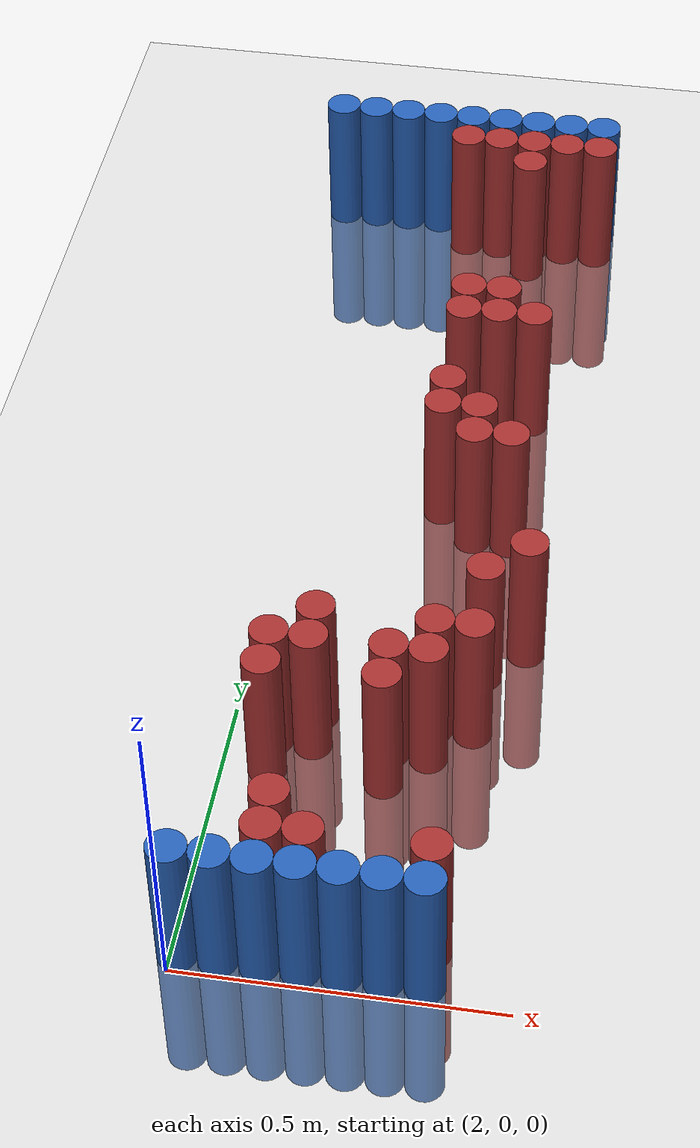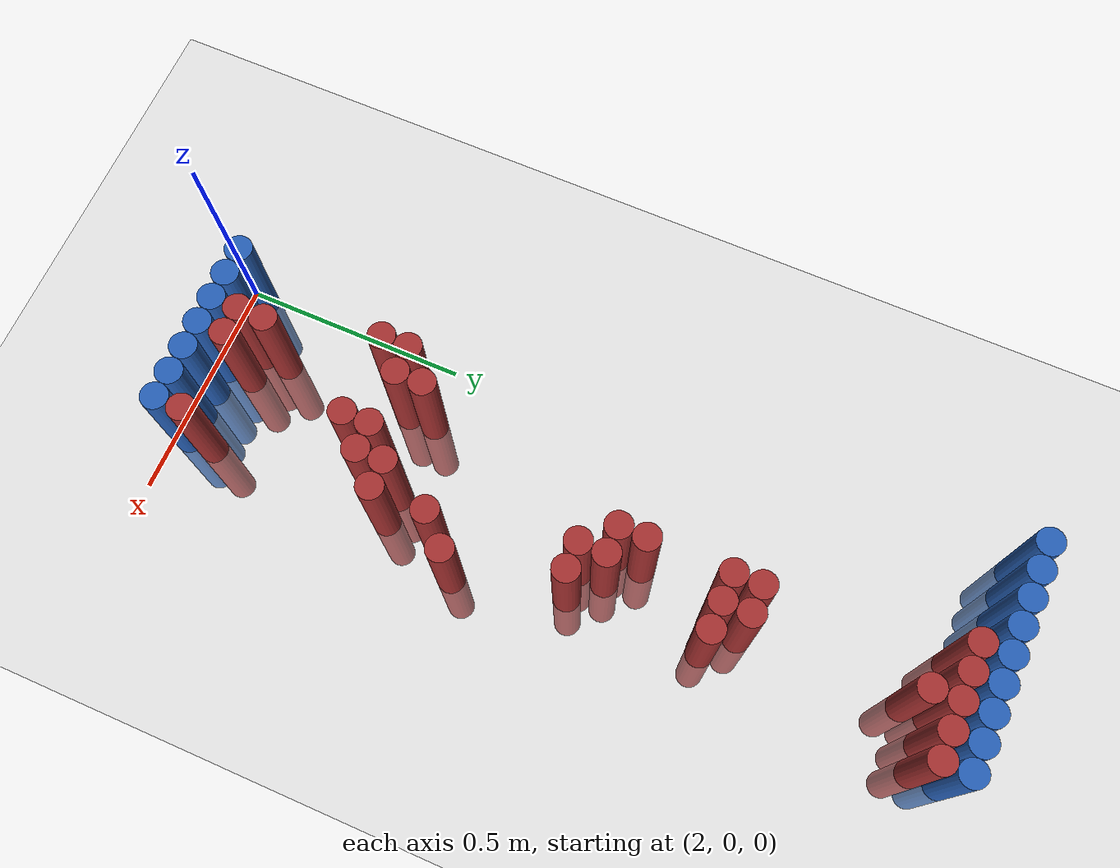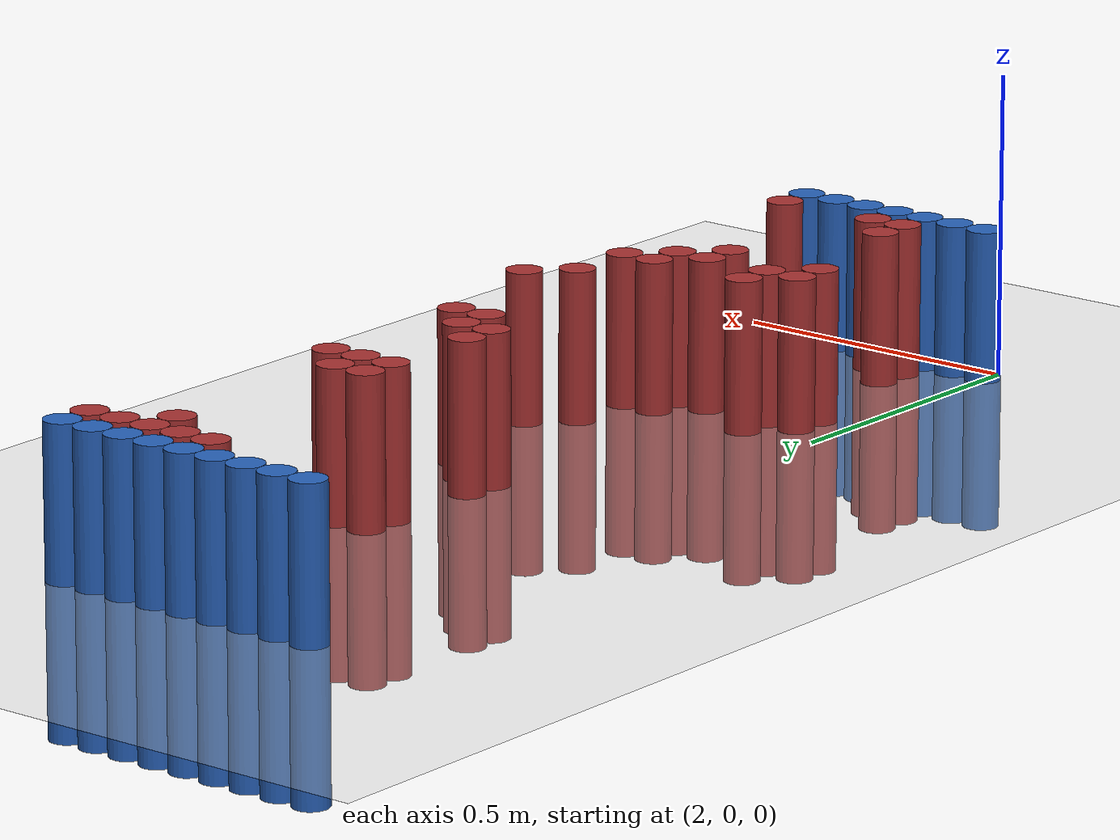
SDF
<sdf version="1.6">
 <world name="default">
  <model name="ground_plane">
   <static>1</static>
   <link name="link">
    <collision name="collision">
     <geometry><plane><normal>0 0 1</normal><size>100 100</size></plane></geometry>
     <surface><friction><ode><mu>100</mu><mu2>50</mu2></ode></friction></surface>
    </collision>
    <visual name="visual">
     <cast_shadows>0</cast_shadows>
     <geometry><plane><normal>0 0 1</normal><size>100 100</size></plane></geometry>
     <material>
      <script><uri>file://media/materials/scripts/gazebo.material</uri><name>Gazebo/Grey</name></script>
     </material>
    </visual>
   </link>
  </model>
  <model name="unit_cylinder_92">
   <static>1</static>
   <pose>1.950000 1.770000 0.000000 0.000000 0.000000 0.000000</pose>
   <link name="link">
    <inertial>
     <mass>1</mass>
     <inertia><ixx>0.145833</ixx><ixy>0</ixy><ixz>0</ixz><iyy>0.145833</iyy><iyz>0</iyz><izz>0.125</izz></inertia>
    </inertial>
    <collision name="collision">
     <geometry><cylinder><radius>0.030000</radius><length>0.5</length></cylinder></geometry>
    </collision>
    <visual name="visual">
     <geometry><cylinder><radius>0.030000</radius><length>0.5</length></cylinder></geometry>
     <material>
      <ambient>0.152000 0.379000 0.720000 1</ambient>
      <diffuse>0.152000 0.379000 0.720000 1</diffuse>
     </material>
     <material>
      <script><name>Gazebo/Grey</name><uri>file://media/materials/scripts/gazebo.material</uri></script>
     </material>
    </visual>
   </link>
  </model>
  <model name="unit_cylinder_93">
   <static>1</static>
   <pose>2.010000 0.030000 0.000000 0.000000 0.000000 0.000000</pose>
   <link name="link">
    <inertial>
     <mass>1</mass>
     <inertia><ixx>0.145833</ixx><ixy>0</ixy><ixz>0</ixz><iyy>0.145833</iyy><iyz>0</iyz><izz>0.125</izz></inertia>
    </inertial>
    <collision name="collision">
     <geometry><cylinder><radius>0.030000</radius><length>0.5</length></cylinder></geometry>
    </collision>
    <visual name="visual">
     <geometry><cylinder><radius>0.030000</radius><length>0.5</length></cylinder></geometry>
     <material>
      <ambient>0.152000 0.379000 0.720000 1</ambient>
      <diffuse>0.152000 0.379000 0.720000 1</diffuse>
     </material>
     <material>
      <script><name>Gazebo/Grey</name><uri>file://media/materials/scripts/gazebo.material</uri></script>
     </material>
    </visual>
   </link>
  </model>
  <model name="unit_cylinder_94">
   <static>1</static>
   <pose>2.010000 1.770000 0.000000 0.000000 0.000000 0.000000</pose>
   <link name="link">
    <inertial>
     <mass>1</mass>
     <inertia><ixx>0.145833</ixx><ixy>0</ixy><ixz>0</ixz><iyy>0.145833</iyy><iyz>0</iyz><izz>0.125</izz></inertia>
    </inertial>
    <collision name="collision">
     <geometry><cylinder><radius>0.030000</radius><length>0.5</length></cylinder></geometry>
    </collision>
    <visual name="visual">
     <geometry><cylinder><radius>0.030000</radius><length>0.5</length></cylinder></geometry>
     <material>
      <ambient>0.152000 0.379000 0.720000 1</ambient>
      <diffuse>0.152000 0.379000 0.720000 1</diffuse>
     </material>
     <material>
      <script><name>Gazebo/Grey</name><uri>file://media/materials/scripts/gazebo.material</uri></script>
     </material>
    </visual>
   </link>
  </model>
  <model name="unit_cylinder_95">
   <static>1</static>
   <pose>2.070000 1.770000 0.000000 0.000000 0.000000 0.000000</pose>
   <link name="link">
    <inertial>
     <mass>1</mass>
     <inertia><ixx>0.145833</ixx><ixy>0</ixy><ixz>0</ixz><iyy>0.145833</iyy><iyz>0</iyz><izz>0.125</izz></inertia>
    </inertial>
    <collision name="collision">
     <geometry><cylinder><radius>0.030000</radius><length>0.5</length></cylinder></geometry>
    </collision>
    <visual name="visual">
     <geometry><cylinder><radius>0.030000</radius><length>0.5</length></cylinder></geometry>
     <material>
      <ambient>0.152000 0.379000 0.720000 1</ambient>
      <diffuse>0.152000 0.379000 0.720000 1</diffuse>
     </material>
     <material>
      <script><name>Gazebo/Grey</name><uri>file://media/materials/scripts/gazebo.material</uri></script>
     </material>
    </visual>
   </link>
  </model>
  <model name="unit_cylinder_96">
   <static>1</static>
   <pose>2.130000 1.770000 0.000000 0.000000 0.000000 0.000000</pose>
   <link name="link">
    <inertial>
     <mass>1</mass>
     <inertia><ixx>0.145833</ixx><ixy>0</ixy><ixz>0</ixz><iyy>0.145833</iyy><iyz>0</iyz><izz>0.125</izz></inertia>
    </inertial>
    <collision name="collision">
     <geometry><cylinder><radius>0.030000</radius><length>0.5</length></cylinder></geometry>
    </collision>
    <visual name="visual">
     <geometry><cylinder><radius>0.030000</radius><length>0.5</length></cylinder></geometry>
     <material>
      <ambient>0.152000 0.379000 0.720000 1</ambient>
      <diffuse>0.152000 0.379000 0.720000 1</diffuse>
     </material>
     <material>
      <script><name>Gazebo/Grey</name><uri>file://media/materials/scripts/gazebo.material</uri></script>
     </material>
    </visual>
   </link>
  </model>
  <model name="unit_cylinder_97">
   <static>1</static>
   <pose>2.190000 1.770000 0.000000 0.000000 0.000000 0.000000</pose>
   <link name="link">
    <inertial>
     <mass>1</mass>
     <inertia><ixx>0.145833</ixx><ixy>0</ixy><ixz>0</ixz><iyy>0.145833</iyy><iyz>0</iyz><izz>0.125</izz></inertia>
    </inertial>
    <collision name="collision">
     <geometry><cylinder><radius>0.030000</radius><length>0.5</length></cylinder></geometry>
    </collision>
    <visual name="visual">
     <geometry><cylinder><radius>0.030000</radius><length>0.5</length></cylinder></geometry>
     <material>
      <ambient>0.152000 0.379000 0.720000 1</ambient>
      <diffuse>0.152000 0.379000 0.720000 1</diffuse>
     </material>
     <material>
      <script><name>Gazebo/Grey</name><uri>file://media/materials/scripts/gazebo.material</uri></script>
     </material>
    </visual>
   </link>
  </model>
  <model name="unit_cylinder_98">
   <static>1</static>
   <pose>2.250000 1.770000 0.000000 0.000000 0.000000 0.000000</pose>
   <link name="link">
    <inertial>
     <mass>1</mass>
     <inertia><ixx>0.145833</ixx><ixy>0</ixy><ixz>0</ixz><iyy>0.145833</iyy><iyz>0</iyz><izz>0.125</izz></inertia>
    </inertial>
    <collision name="collision">
     <geometry><cylinder><radius>0.030000</radius><length>0.5</length></cylinder></geometry>
    </collision>
    <visual name="visual">
     <geometry><cylinder><radius>0.030000</radius><length>0.5</length></cylinder></geometry>
     <material>
      <ambient>0.152000 0.379000 0.720000 1</ambient>
      <diffuse>0.152000 0.379000 0.720000 1</diffuse>
     </material>
     <material>
      <script><name>Gazebo/Grey</name><uri>file://media/materials/scripts/gazebo.material</uri></script>
     </material>
    </visual>
   </link>
  </model>
  <model name="unit_cylinder_99">
   <static>1</static>
   <pose>2.310000 1.770000 0.000000 0.000000 0.000000 0.000000</pose>
   <link name="link">
    <inertial>
     <mass>1</mass>
     <inertia><ixx>0.145833</ixx><ixy>0</ixy><ixz>0</ixz><iyy>0.145833</iyy><iyz>0</iyz><izz>0.125</izz></inertia>
    </inertial>
    <collision name="collision">
     <geometry><cylinder><radius>0.030000</radius><length>0.5</length></cylinder></geometry>
    </collision>
    <visual name="visual">
     <geometry><cylinder><radius>0.030000</radius><length>0.5</length></cylinder></geometry>
     <material>
      <ambient>0.152000 0.379000 0.720000 1</ambient>
      <diffuse>0.152000 0.379000 0.720000 1</diffuse>
     </material>
     <material>
      <script><name>Gazebo/Grey</name><uri>file://media/materials/scripts/gazebo.material</uri></script>
     </material>
    </visual>
   </link>
  </model>
  <model name="unit_cylinder_100">
   <static>1</static>
   <pose>2.370000 1.770000 0.000000 0.000000 0.000000 0.000000</pose>
   <link name="link">
    <inertial>
     <mass>1</mass>
     <inertia><ixx>0.145833</ixx><ixy>0</ixy><ixz>0</ixz><iyy>0.145833</iyy><iyz>0</iyz><izz>0.125</izz></inertia>
    </inertial>
    <collision name="collision">
     <geometry><cylinder><radius>0.030000</radius><length>0.5</length></cylinder></geometry>
    </collision>
    <visual name="visual">
     <geometry><cylinder><radius>0.030000</radius><length>0.5</length></cylinder></geometry>
     <material>
      <ambient>0.152000 0.379000 0.720000 1</ambient>
      <diffuse>0.152000 0.379000 0.720000 1</diffuse>
     </material>
     <material>
      <script><name>Gazebo/Grey</name><uri>file://media/materials/scripts/gazebo.material</uri></script>
     </material>
    </visual>
   </link>
  </model>
  <model name="unit_cylinder_101">
   <static>1</static>
   <pose>2.430000 1.770000 0.000000 0.000000 0.000000 0.000000</pose>
   <link name="link">
    <inertial>
     <mass>1</mass>
     <inertia><ixx>0.145833</ixx><ixy>0</ixy><ixz>0</ixz><iyy>0.145833</iyy><iyz>0</iyz><izz>0.125</izz></inertia>
    </inertial>
    <collision name="collision">
     <geometry><cylinder><radius>0.030000</radius><length>0.5</length></cylinder></geometry>
    </collision>
    <visual name="visual">
     <geometry><cylinder><radius>0.030000</radius><length>0.5</length></cylinder></geometry>
     <material>
      <ambient>0.152000 0.379000 0.720000 1</ambient>
      <diffuse>0.152000 0.379000 0.720000 1</diffuse>
     </material>
     <material>
      <script><name>Gazebo/Grey</name><uri>file://media/materials/scripts/gazebo.material</uri></script>
     </material>
    </visual>
   </link>
  </model>
  <model name="unit_cylinder_125">
   <static>1</static>
   <pose>2.190000 1.710000 0.000000 0.000000 0.000000 0.000000</pose>
   <link name="link">
    <inertial>
     <mass>1</mass>
     <inertia><ixx>0.145833</ixx><ixy>0</ixy><ixz>0</ixz><iyy>0.145833</iyy><iyz>0</iyz><izz>0.125</izz></inertia>
    </inertial>
    <collision name="collision">
     <geometry><cylinder><radius>0.030000</radius><length>0.5</length></cylinder></geometry>
    </collision>
    <visual name="visual">
     <geometry><cylinder><radius>0.030000</radius><length>0.5</length></cylinder></geometry>
     <material>
      <ambient>0.648000 0.192000 0.192000 1</ambient>
      <diffuse>0.648000 0.192000 0.192000 1</diffuse>
     </material>
     <material>
      <script><name>Gazebo/Grey</name><uri>file://media/materials/scripts/gazebo.material</uri></script>
     </material>
    </visual>
   </link>
  </model>
  <model name="unit_cylinder_126">
   <static>1</static>
   <pose>2.250000 1.710000 0.000000 0.000000 0.000000 0.000000</pose>
   <link name="link">
    <inertial>
     <mass>1</mass>
     <inertia><ixx>0.145833</ixx><ixy>0</ixy><ixz>0</ixz><iyy>0.145833</iyy><iyz>0</iyz><izz>0.125</izz></inertia>
    </inertial>
    <collision name="collision">
     <geometry><cylinder><radius>0.030000</radius><length>0.5</length></cylinder></geometry>
    </collision>
    <visual name="visual">
     <geometry><cylinder><radius>0.030000</radius><length>0.5</length></cylinder></geometry>
     <material>
      <ambient>0.648000 0.192000 0.192000 1</ambient>
      <diffuse>0.648000 0.192000 0.192000 1</diffuse>
     </material>
     <material>
      <script><name>Gazebo/Grey</name><uri>file://media/materials/scripts/gazebo.material</uri></script>
     </material>
    </visual>
   </link>
  </model>
  <model name="unit_cylinder_127">
   <static>1</static>
   <pose>2.310000 1.710000 0.000000 0.000000 0.000000 0.000000</pose>
   <link name="link">
    <inertial>
     <mass>1</mass>
     <inertia><ixx>0.145833</ixx><ixy>0</ixy><ixz>0</ixz><iyy>0.145833</iyy><iyz>0</iyz><izz>0.125</izz></inertia>
    </inertial>
    <collision name="collision">
     <geometry><cylinder><radius>0.030000</radius><length>0.5</length></cylinder></geometry>
    </collision>
    <visual name="visual">
     <geometry><cylinder><radius>0.030000</radius><length>0.5</length></cylinder></geometry>
     <material>
      <ambient>0.648000 0.192000 0.192000 1</ambient>
      <diffuse>0.648000 0.192000 0.192000 1</diffuse>
     </material>
     <material>
      <script><name>Gazebo/Grey</name><uri>file://media/materials/scripts/gazebo.material</uri></script>
     </material>
    </visual>
   </link>
  </model>
  <model name="unit_cylinder_128">
   <static>1</static>
   <pose>2.370000 1.710000 0.000000 0.000000 0.000000 0.000000</pose>
   <link name="link">
    <inertial>
     <mass>1</mass>
     <inertia><ixx>0.145833</ixx><ixy>0</ixy><ixz>0</ixz><iyy>0.145833</iyy><iyz>0</iyz><izz>0.125</izz></inertia>
    </inertial>
    <collision name="collision">
     <geometry><cylinder><radius>0.030000</radius><length>0.5</length></cylinder></geometry>
    </collision>
    <visual name="visual">
     <geometry><cylinder><radius>0.030000</radius><length>0.5</length></cylinder></geometry>
     <material>
      <ambient>0.648000 0.192000 0.192000 1</ambient>
      <diffuse>0.648000 0.192000 0.192000 1</diffuse>
     </material>
     <material>
      <script><name>Gazebo/Grey</name><uri>file://media/materials/scripts/gazebo.material</uri></script>
     </material>
    </visual>
   </link>
  </model>
  <model name="unit_cylinder_129">
   <static>1</static>
   <pose>2.430000 1.710000 0.000000 0.000000 0.000000 0.000000</pose>
   <link name="link">
    <inertial>
     <mass>1</mass>
     <inertia><ixx>0.145833</ixx><ixy>0</ixy><ixz>0</ixz><iyy>0.145833</iyy><iyz>0</iyz><izz>0.125</izz></inertia>
    </inertial>
    <collision name="collision">
     <geometry><cylinder><radius>0.030000</radius><length>0.5</length></cylinder></geometry>
    </collision>
    <visual name="visual">
     <geometry><cylinder><radius>0.030000</radius><length>0.5</length></cylinder></geometry>
     <material>
      <ambient>0.648000 0.192000 0.192000 1</ambient>
      <diffuse>0.648000 0.192000 0.192000 1</diffuse>
     </material>
     <material>
      <script><name>Gazebo/Grey</name><uri>file://media/materials/scripts/gazebo.material</uri></script>
     </material>
    </visual>
   </link>
  </model>
  <model name="unit_cylinder_145">
   <static>1</static>
   <pose>2.310000 1.650000 0.000000 0.000000 0.000000 0.000000</pose>
   <link name="link">
    <inertial>
     <mass>1</mass>
     <inertia><ixx>0.145833</ixx><ixy>0</ixy><ixz>0</ixz><iyy>0.145833</iyy><iyz>0</iyz><izz>0.125</izz></inertia>
    </inertial>
    <collision name="collision">
     <geometry><cylinder><radius>0.030000</radius><length>0.5</length></cylinder></geometry>
    </collision>
    <visual name="visual">
     <geometry><cylinder><radius>0.030000</radius><length>0.5</length></cylinder></geometry>
     <material>
      <ambient>0.648000 0.192000 0.192000 1</ambient>
      <diffuse>0.648000 0.192000 0.192000 1</diffuse>
     </material>
     <material>
      <script><name>Gazebo/Grey</name><uri>file://media/materials/scripts/gazebo.material</uri></script>
     </material>
    </visual>
   </link>
  </model>
  <model name="unit_cylinder_165">
   <static>1</static>
   <pose>2.250000 1.290000 0.000000 0.000000 0.000000 0.000000</pose>
   <link name="link">
    <inertial>
     <mass>1</mass>
     <inertia><ixx>0.145833</ixx><ixy>0</ixy><ixz>0</ixz><iyy>0.145833</iyy><iyz>0</iyz><izz>0.125</izz></inertia>
    </inertial>
    <collision name="collision">
     <geometry><cylinder><radius>0.030000</radius><length>0.5</length></cylinder></geometry>
    </collision>
    <visual name="visual">
     <geometry><cylinder><radius>0.030000</radius><length>0.5</length></cylinder></geometry>
     <material>
      <ambient>0.648000 0.192000 0.192000 1</ambient>
      <diffuse>0.648000 0.192000 0.192000 1</diffuse>
     </material>
     <material>
      <script><name>Gazebo/Grey</name><uri>file://media/materials/scripts/gazebo.material</uri></script>
     </material>
    </visual>
   </link>
  </model>
  <model name="unit_cylinder_166">
   <static>1</static>
   <pose>2.310000 1.290000 0.000000 0.000000 0.000000 0.000000</pose>
   <link name="link">
    <inertial>
     <mass>1</mass>
     <inertia><ixx>0.145833</ixx><ixy>0</ixy><ixz>0</ixz><iyy>0.145833</iyy><iyz>0</iyz><izz>0.125</izz></inertia>
    </inertial>
    <collision name="collision">
     <geometry><cylinder><radius>0.030000</radius><length>0.5</length></cylinder></geometry>
    </collision>
    <visual name="visual">
     <geometry><cylinder><radius>0.030000</radius><length>0.5</length></cylinder></geometry>
     <material>
      <ambient>0.648000 0.192000 0.192000 1</ambient>
      <diffuse>0.648000 0.192000 0.192000 1</diffuse>
     </material>
     <material>
      <script><name>Gazebo/Grey</name><uri>file://media/materials/scripts/gazebo.material</uri></script>
     </material>
    </visual>
   </link>
  </model>
  <model name="unit_cylinder_169">
   <static>1</static>
   <pose>2.250000 1.230000 0.000000 0.000000 0.000000 0.000000</pose>
   <link name="link">
    <inertial>
     <mass>1</mass>
     <inertia><ixx>0.145833</ixx><ixy>0</ixy><ixz>0</ixz><iyy>0.145833</iyy><iyz>0</iyz><izz>0.125</izz></inertia>
    </inertial>
    <collision name="collision">
     <geometry><cylinder><radius>0.030000</radius><length>0.5</length></cylinder></geometry>
    </collision>
    <visual name="visual">
     <geometry><cylinder><radius>0.030000</radius><length>0.5</length></cylinder></geometry>
     <material>
      <ambient>0.648000 0.192000 0.192000 1</ambient>
      <diffuse>0.648000 0.192000 0.192000 1</diffuse>
     </material>
     <material>
      <script><name>Gazebo/Grey</name><uri>file://media/materials/scripts/gazebo.material</uri></script>
     </material>
    </visual>
   </link>
  </model>
  <model name="unit_cylinder_170">
   <static>1</static>
   <pose>2.310000 1.230000 0.000000 0.000000 0.000000 0.000000</pose>
   <link name="link">
    <inertial>
     <mass>1</mass>
     <inertia><ixx>0.145833</ixx><ixy>0</ixy><ixz>0</ixz><iyy>0.145833</iyy><iyz>0</iyz><izz>0.125</izz></inertia>
    </inertial>
    <collision name="collision">
     <geometry><cylinder><radius>0.030000</radius><length>0.5</length></cylinder></geometry>
    </collision>
    <visual name="visual">
     <geometry><cylinder><radius>0.030000</radius><length>0.5</length></cylinder></geometry>
     <material>
      <ambient>0.648000 0.192000 0.192000 1</ambient>
      <diffuse>0.648000 0.192000 0.192000 1</diffuse>
     </material>
     <material>
      <script><name>Gazebo/Grey</name><uri>file://media/materials/scripts/gazebo.material</uri></script>
     </material>
    </visual>
   </link>
  </model>
  <model name="unit_cylinder_171">
   <static>1</static>
   <pose>2.370000 1.230000 0.000000 0.000000 0.000000 0.000000</pose>
   <link name="link">
    <inertial>
     <mass>1</mass>
     <inertia><ixx>0.145833</ixx><ixy>0</ixy><ixz>0</ixz><iyy>0.145833</iyy><iyz>0</iyz><izz>0.125</izz></inertia>
    </inertial>
    <collision name="collision">
     <geometry><cylinder><radius>0.030000</radius><length>0.5</length></cylinder></geometry>
    </collision>
    <visual name="visual">
     <geometry><cylinder><radius>0.030000</radius><length>0.5</length></cylinder></geometry>
     <material>
      <ambient>0.648000 0.192000 0.192000 1</ambient>
      <diffuse>0.648000 0.192000 0.192000 1</diffuse>
     </material>
     <material>
      <script><name>Gazebo/Grey</name><uri>file://media/materials/scripts/gazebo.material</uri></script>
     </material>
    </visual>
   </link>
  </model>
  <model name="unit_cylinder_173">
   <static>1</static>
   <pose>2.250000 1.050000 0.000000 0.000000 0.000000 0.000000</pose>
   <link name="link">
    <inertial>
     <mass>1</mass>
     <inertia><ixx>0.145833</ixx><ixy>0</ixy><ixz>0</ixz><iyy>0.145833</iyy><iyz>0</iyz><izz>0.125</izz></inertia>
    </inertial>
    <collision name="collision">
     <geometry><cylinder><radius>0.030000</radius><length>0.5</length></cylinder></geometry>
    </collision>
    <visual name="visual">
     <geometry><cylinder><radius>0.030000</radius><length>0.5</length></cylinder></geometry>
     <material>
      <ambient>0.648000 0.192000 0.192000 1</ambient>
      <diffuse>0.648000 0.192000 0.192000 1</diffuse>
     </material>
     <material>
      <script><name>Gazebo/Grey</name><uri>file://media/materials/scripts/gazebo.material</uri></script>
     </material>
    </visual>
   </link>
  </model>
  <model name="unit_cylinder_176">
   <static>1</static>
   <pose>2.250000 0.990000 0.000000 0.000000 0.000000 0.000000</pose>
   <link name="link">
    <inertial>
     <mass>1</mass>
     <inertia><ixx>0.145833</ixx><ixy>0</ixy><ixz>0</ixz><iyy>0.145833</iyy><iyz>0</iyz><izz>0.125</izz></inertia>
    </inertial>
    <collision name="collision">
     <geometry><cylinder><radius>0.030000</radius><length>0.5</length></cylinder></geometry>
    </collision>
    <visual name="visual">
     <geometry><cylinder><radius>0.030000</radius><length>0.5</length></cylinder></geometry>
     <material>
      <ambient>0.648000 0.192000 0.192000 1</ambient>
      <diffuse>0.648000 0.192000 0.192000 1</diffuse>
     </material>
     <material>
      <script><name>Gazebo/Grey</name><uri>file://media/materials/scripts/gazebo.material</uri></script>
     </material>
    </visual>
   </link>
  </model>
  <model name="unit_cylinder_177">
   <static>1</static>
   <pose>2.310000 0.990000 0.000000 0.000000 0.000000 0.000000</pose>
   <link name="link">
    <inertial>
     <mass>1</mass>
     <inertia><ixx>0.145833</ixx><ixy>0</ixy><ixz>0</ixz><iyy>0.145833</iyy><iyz>0</iyz><izz>0.125</izz></inertia>
    </inertial>
    <collision name="collision">
     <geometry><cylinder><radius>0.030000</radius><length>0.5</length></cylinder></geometry>
    </collision>
    <visual name="visual">
     <geometry><cylinder><radius>0.030000</radius><length>0.5</length></cylinder></geometry>
     <material>
      <ambient>0.648000 0.192000 0.192000 1</ambient>
      <diffuse>0.648000 0.192000 0.192000 1</diffuse>
     </material>
     <material>
      <script><name>Gazebo/Grey</name><uri>file://media/materials/scripts/gazebo.material</uri></script>
     </material>
    </visual>
   </link>
  </model>
  <model name="unit_cylinder_179">
   <static>1</static>
   <pose>2.310000 0.930000 0.000000 0.000000 0.000000 0.000000</pose>
   <link name="link">
    <inertial>
     <mass>1</mass>
     <inertia><ixx>0.145833</ixx><ixy>0</ixy><ixz>0</ixz><iyy>0.145833</iyy><iyz>0</iyz><izz>0.125</izz></inertia>
    </inertial>
    <collision name="collision">
     <geometry><cylinder><radius>0.030000</radius><length>0.5</length></cylinder></geometry>
    </collision>
    <visual name="visual">
     <geometry><cylinder><radius>0.030000</radius><length>0.5</length></cylinder></geometry>
     <material>
      <ambient>0.648000 0.192000 0.192000 1</ambient>
      <diffuse>0.648000 0.192000 0.192000 1</diffuse>
     </material>
     <material>
      <script><name>Gazebo/Grey</name><uri>file://media/materials/scripts/gazebo.material</uri></script>
     </material>
    </visual>
   </link>
  </model>
  <model name="unit_cylinder_180">
   <static>1</static>
   <pose>2.370000 0.930000 0.000000 0.000000 0.000000 0.000000</pose>
   <link name="link">
    <inertial>
     <mass>1</mass>
     <inertia><ixx>0.145833</ixx><ixy>0</ixy><ixz>0</ixz><iyy>0.145833</iyy><iyz>0</iyz><izz>0.125</izz></inertia>
    </inertial>
    <collision name="collision">
     <geometry><cylinder><radius>0.030000</radius><length>0.5</length></cylinder></geometry>
    </collision>
    <visual name="visual">
     <geometry><cylinder><radius>0.030000</radius><length>0.5</length></cylinder></geometry>
     <material>
      <ambient>0.648000 0.192000 0.192000 1</ambient>
      <diffuse>0.648000 0.192000 0.192000 1</diffuse>
     </material>
     <material>
      <script><name>Gazebo/Grey</name><uri>file://media/materials/scripts/gazebo.material</uri></script>
     </material>
    </visual>
   </link>
  </model>
  <model name="unit_cylinder_190">
   <static>1</static>
   <pose>2.430000 0.690000 0.000000 0.000000 0.000000 0.000000</pose>
   <link name="link">
    <inertial>
     <mass>1</mass>
     <inertia><ixx>0.145833</ixx><ixy>0</ixy><ixz>0</ixz><iyy>0.145833</iyy><iyz>0</iyz><izz>0.125</izz></inertia>
    </inertial>
    <collision name="collision">
     <geometry><cylinder><radius>0.030000</radius><length>0.5</length></cylinder></geometry>
    </collision>
    <visual name="visual">
     <geometry><cylinder><radius>0.030000</radius><length>0.5</length></cylinder></geometry>
     <material>
      <ambient>0.648000 0.192000 0.192000 1</ambient>
      <diffuse>0.648000 0.192000 0.192000 1</diffuse>
     </material>
     <material>
      <script><name>Gazebo/Grey</name><uri>file://media/materials/scripts/gazebo.material</uri></script>
     </material>
    </visual>
   </link>
  </model>
  <model name="unit_cylinder_193">
   <static>1</static>
   <pose>2.370000 0.630000 0.000000 0.000000 0.000000 0.000000</pose>
   <link name="link">
    <inertial>
     <mass>1</mass>
     <inertia><ixx>0.145833</ixx><ixy>0</ixy><ixz>0</ixz><iyy>0.145833</iyy><iyz>0</iyz><izz>0.125</izz></inertia>
    </inertial>
    <collision name="collision">
     <geometry><cylinder><radius>0.030000</radius><length>0.5</length></cylinder></geometry>
    </collision>
    <visual name="visual">
     <geometry><cylinder><radius>0.030000</radius><length>0.5</length></cylinder></geometry>
     <material>
      <ambient>0.648000 0.192000 0.192000 1</ambient>
      <diffuse>0.648000 0.192000 0.192000 1</diffuse>
     </material>
     <material>
      <script><name>Gazebo/Grey</name><uri>file://media/materials/scripts/gazebo.material</uri></script>
     </material>
    </visual>
   </link>
  </model>
  <model name="unit_cylinder_201">
   <static>1</static>
   <pose>2.130000 0.510000 0.000000 0.000000 0.000000 0.000000</pose>
   <link name="link">
    <inertial>
     <mass>1</mass>
     <inertia><ixx>0.145833</ixx><ixy>0</ixy><ixz>0</ixz><iyy>0.145833</iyy><iyz>0</iyz><izz>0.125</izz></inertia>
    </inertial>
    <collision name="collision">
     <geometry><cylinder><radius>0.030000</radius><length>0.5</length></cylinder></geometry>
    </collision>
    <visual name="visual">
     <geometry><cylinder><radius>0.030000</radius><length>0.5</length></cylinder></geometry>
     <material>
      <ambient>0.648000 0.192000 0.192000 1</ambient>
      <diffuse>0.648000 0.192000 0.192000 1</diffuse>
     </material>
     <material>
      <script><name>Gazebo/Grey</name><uri>file://media/materials/scripts/gazebo.material</uri></script>
     </material>
    </visual>
   </link>
  </model>
  <model name="unit_cylinder_202">
   <static>1</static>
   <pose>2.310000 0.510000 0.000000 0.000000 0.000000 0.000000</pose>
   <link name="link">
    <inertial>
     <mass>1</mass>
     <inertia><ixx>0.145833</ixx><ixy>0</ixy><ixz>0</ixz><iyy>0.145833</iyy><iyz>0</iyz><izz>0.125</izz></inertia>
    </inertial>
    <collision name="collision">
     <geometry><cylinder><radius>0.030000</radius><length>0.5</length></cylinder></geometry>
    </collision>
    <visual name="visual">
     <geometry><cylinder><radius>0.030000</radius><length>0.5</length></cylinder></geometry>
     <material>
      <ambient>0.648000 0.192000 0.192000 1</ambient>
      <diffuse>0.648000 0.192000 0.192000 1</diffuse>
     </material>
     <material>
      <script><name>Gazebo/Grey</name><uri>file://media/materials/scripts/gazebo.material</uri></script>
     </material>
    </visual>
   </link>
  </model>
  <model name="unit_cylinder_203">
   <static>1</static>
   <pose>2.370000 0.510000 0.000000 0.000000 0.000000 0.000000</pose>
   <link name="link">
    <inertial>
     <mass>1</mass>
     <inertia><ixx>0.145833</ixx><ixy>0</ixy><ixz>0</ixz><iyy>0.145833</iyy><iyz>0</iyz><izz>0.125</izz></inertia>
    </inertial>
    <collision name="collision">
     <geometry><cylinder><radius>0.030000</radius><length>0.5</length></cylinder></geometry>
    </collision>
    <visual name="visual">
     <geometry><cylinder><radius>0.030000</radius><length>0.5</length></cylinder></geometry>
     <material>
      <ambient>0.648000 0.192000 0.192000 1</ambient>
      <diffuse>0.648000 0.192000 0.192000 1</diffuse>
     </material>
     <material>
      <script><name>Gazebo/Grey</name><uri>file://media/materials/scripts/gazebo.material</uri></script>
     </material>
    </visual>
   </link>
  </model>
  <model name="unit_cylinder_205">
   <static>1</static>
   <pose>2.070000 0.450000 0.000000 0.000000 0.000000 0.000000</pose>
   <link name="link">
    <inertial>
     <mass>1</mass>
     <inertia><ixx>0.145833</ixx><ixy>0</ixy><ixz>0</ixz><iyy>0.145833</iyy><iyz>0</iyz><izz>0.125</izz></inertia>
    </inertial>
    <collision name="collision">
     <geometry><cylinder><radius>0.030000</radius><length>0.5</length></cylinder></geometry>
    </collision>
    <visual name="visual">
     <geometry><cylinder><radius>0.030000</radius><length>0.5</length></cylinder></geometry>
     <material>
      <ambient>0.648000 0.192000 0.192000 1</ambient>
      <diffuse>0.648000 0.192000 0.192000 1</diffuse>
     </material>
     <material>
      <script><name>Gazebo/Grey</name><uri>file://media/materials/scripts/gazebo.material</uri></script>
     </material>
    </visual>
   </link>
  </model>
  <model name="unit_cylinder_206">
   <static>1</static>
   <pose>2.130000 0.450000 0.000000 0.000000 0.000000 0.000000</pose>
   <link name="link">
    <inertial>
     <mass>1</mass>
     <inertia><ixx>0.145833</ixx><ixy>0</ixy><ixz>0</ixz><iyy>0.145833</iyy><iyz>0</iyz><izz>0.125</izz></inertia>
    </inertial>
    <collision name="collision">
     <geometry><cylinder><radius>0.030000</radius><length>0.5</length></cylinder></geometry>
    </collision>
    <visual name="visual">
     <geometry><cylinder><radius>0.030000</radius><length>0.5</length></cylinder></geometry>
     <material>
      <ambient>0.648000 0.192000 0.192000 1</ambient>
      <diffuse>0.648000 0.192000 0.192000 1</diffuse>
     </material>
     <material>
      <script><name>Gazebo/Grey</name><uri>file://media/materials/scripts/gazebo.material</uri></script>
     </material>
    </visual>
   </link>
  </model>
  <model name="unit_cylinder_207">
   <static>1</static>
   <pose>2.250000 0.450000 0.000000 0.000000 0.000000 0.000000</pose>
   <link name="link">
    <inertial>
     <mass>1</mass>
     <inertia><ixx>0.145833</ixx><ixy>0</ixy><ixz>0</ixz><iyy>0.145833</iyy><iyz>0</iyz><izz>0.125</izz></inertia>
    </inertial>
    <collision name="collision">
     <geometry><cylinder><radius>0.030000</radius><length>0.5</length></cylinder></geometry>
    </collision>
    <visual name="visual">
     <geometry><cylinder><radius>0.030000</radius><length>0.5</length></cylinder></geometry>
     <material>
      <ambient>0.648000 0.192000 0.192000 1</ambient>
      <diffuse>0.648000 0.192000 0.192000 1</diffuse>
     </material>
     <material>
      <script><name>Gazebo/Grey</name><uri>file://media/materials/scripts/gazebo.material</uri></script>
     </material>
    </visual>
   </link>
  </model>
  <model name="unit_cylinder_208">
   <static>1</static>
   <pose>2.310000 0.450000 0.000000 0.000000 0.000000 0.000000</pose>
   <link name="link">
    <inertial>
     <mass>1</mass>
     <inertia><ixx>0.145833</ixx><ixy>0</ixy><ixz>0</ixz><iyy>0.145833</iyy><iyz>0</iyz><izz>0.125</izz></inertia>
    </inertial>
    <collision name="collision">
     <geometry><cylinder><radius>0.030000</radius><length>0.5</length></cylinder></geometry>
    </collision>
    <visual name="visual">
     <geometry><cylinder><radius>0.030000</radius><length>0.5</length></cylinder></geometry>
     <material>
      <ambient>0.648000 0.192000 0.192000 1</ambient>
      <diffuse>0.648000 0.192000 0.192000 1</diffuse>
     </material>
     <material>
      <script><name>Gazebo/Grey</name><uri>file://media/materials/scripts/gazebo.material</uri></script>
     </material>
    </visual>
   </link>
  </model>
  <model name="unit_cylinder_211">
   <static>1</static>
   <pose>2.070000 0.390000 0.000000 0.000000 0.000000 0.000000</pose>
   <link name="link">
    <inertial>
     <mass>1</mass>
     <inertia><ixx>0.145833</ixx><ixy>0</ixy><ixz>0</ixz><iyy>0.145833</iyy><iyz>0</iyz><izz>0.125</izz></inertia>
    </inertial>
    <collision name="collision">
     <geometry><cylinder><radius>0.030000</radius><length>0.5</length></cylinder></geometry>
    </collision>
    <visual name="visual">
     <geometry><cylinder><radius>0.030000</radius><length>0.5</length></cylinder></geometry>
     <material>
      <ambient>0.648000 0.192000 0.192000 1</ambient>
      <diffuse>0.648000 0.192000 0.192000 1</diffuse>
     </material>
     <material>
      <script><name>Gazebo/Grey</name><uri>file://media/materials/scripts/gazebo.material</uri></script>
     </material>
    </visual>
   </link>
  </model>
  <model name="unit_cylinder_212">
   <static>1</static>
   <pose>2.250000 0.390000 0.000000 0.000000 0.000000 0.000000</pose>
   <link name="link">
    <inertial>
     <mass>1</mass>
     <inertia><ixx>0.145833</ixx><ixy>0</ixy><ixz>0</ixz><iyy>0.145833</iyy><iyz>0</iyz><izz>0.125</izz></inertia>
    </inertial>
    <collision name="collision">
     <geometry><cylinder><radius>0.030000</radius><length>0.5</length></cylinder></geometry>
    </collision>
    <visual name="visual">
     <geometry><cylinder><radius>0.030000</radius><length>0.5</length></cylinder></geometry>
     <material>
      <ambient>0.648000 0.192000 0.192000 1</ambient>
      <diffuse>0.648000 0.192000 0.192000 1</diffuse>
     </material>
     <material>
      <script><name>Gazebo/Grey</name><uri>file://media/materials/scripts/gazebo.material</uri></script>
     </material>
    </visual>
   </link>
  </model>
  <model name="unit_cylinder_225">
   <static>1</static>
   <pose>2.130000 0.150000 0.000000 0.000000 0.000000 0.000000</pose>
   <link name="link">
    <inertial>
     <mass>1</mass>
     <inertia><ixx>0.145833</ixx><ixy>0</ixy><ixz>0</ixz><iyy>0.145833</iyy><iyz>0</iyz><izz>0.125</izz></inertia>
    </inertial>
    <collision name="collision">
     <geometry><cylinder><radius>0.030000</radius><length>0.5</length></cylinder></geometry>
    </collision>
    <visual name="visual">
     <geometry><cylinder><radius>0.030000</radius><length>0.5</length></cylinder></geometry>
     <material>
      <ambient>0.648000 0.192000 0.192000 1</ambient>
      <diffuse>0.648000 0.192000 0.192000 1</diffuse>
     </material>
     <material>
      <script><name>Gazebo/Grey</name><uri>file://media/materials/scripts/gazebo.material</uri></script>
     </material>
    </visual>
   </link>
  </model>
  <model name="unit_cylinder_233">
   <static>1</static>
   <pose>2.130000 0.090000 0.000000 0.000000 0.000000 0.000000</pose>
   <link name="link">
    <inertial>
     <mass>1</mass>
     <inertia><ixx>0.145833</ixx><ixy>0</ixy><ixz>0</ixz><iyy>0.145833</iyy><iyz>0</iyz><izz>0.125</izz></inertia>
    </inertial>
    <collision name="collision">
     <geometry><cylinder><radius>0.030000</radius><length>0.5</length></cylinder></geometry>
    </collision>
    <visual name="visual">
     <geometry><cylinder><radius>0.030000</radius><length>0.5</length></cylinder></geometry>
     <material>
      <ambient>0.648000 0.192000 0.192000 1</ambient>
      <diffuse>0.648000 0.192000 0.192000 1</diffuse>
     </material>
     <material>
      <script><name>Gazebo/Grey</name><uri>file://media/materials/scripts/gazebo.material</uri></script>
     </material>
    </visual>
   </link>
  </model>
  <model name="unit_cylinder_234">
   <static>1</static>
   <pose>2.190000 0.090000 0.000000 0.000000 0.000000 0.000000</pose>
   <link name="link">
    <inertial>
     <mass>1</mass>
     <inertia><ixx>0.145833</ixx><ixy>0</ixy><ixz>0</ixz><iyy>0.145833</iyy><iyz>0</iyz><izz>0.125</izz></inertia>
    </inertial>
    <collision name="collision">
     <geometry><cylinder><radius>0.030000</radius><length>0.5</length></cylinder></geometry>
    </collision>
    <visual name="visual">
     <geometry><cylinder><radius>0.030000</radius><length>0.5</length></cylinder></geometry>
     <material>
      <ambient>0.648000 0.192000 0.192000 1</ambient>
      <diffuse>0.648000 0.192000 0.192000 1</diffuse>
     </material>
     <material>
      <script><name>Gazebo/Grey</name><uri>file://media/materials/scripts/gazebo.material</uri></script>
     </material>
    </visual>
   </link>
  </model>
  <model name="unit_cylinder_235">
   <static>1</static>
   <pose>2.370000 0.090000 0.000000 0.000000 0.000000 0.000000</pose>
   <link name="link">
    <inertial>
     <mass>1</mass>
     <inertia><ixx>0.145833</ixx><ixy>0</ixy><ixz>0</ixz><iyy>0.145833</iyy><iyz>0</iyz><izz>0.125</izz></inertia>
    </inertial>
    <collision name="collision">
     <geometry><cylinder><radius>0.030000</radius><length>0.5</length></cylinder></geometry>
    </collision>
    <visual name="visual">
     <geometry><cylinder><radius>0.030000</radius><length>0.5</length></cylinder></geometry>
     <material>
      <ambient>0.648000 0.192000 0.192000 1</ambient>
      <diffuse>0.648000 0.192000 0.192000 1</diffuse>
     </material>
     <material>
      <script><name>Gazebo/Grey</name><uri>file://media/materials/scripts/gazebo.material</uri></script>
     </material>
    </visual>
   </link>
  </model>
  <model name="unit_cylinder_247">
   <static>1</static>
   <pose>2.070000 0.030000 0.000000 0.000000 0.000000 0.000000</pose>
   <link name="link">
    <inertial>
     <mass>1</mass>
     <inertia><ixx>0.145833</ixx><ixy>0</ixy><ixz>0</ixz><iyy>0.145833</iyy><iyz>0</iyz><izz>0.125</izz></inertia>
    </inertial>
    <collision name="collision">
     <geometry><cylinder><radius>0.030000</radius><length>0.5</length></cylinder></geometry>
    </collision>
    <visual name="visual">
     <geometry><cylinder><radius>0.030000</radius><length>0.5</length></cylinder></geometry>
     <material>
      <ambient>0.152000 0.379000 0.720000 1</ambient>
      <diffuse>0.152000 0.379000 0.720000 1</diffuse>
     </material>
     <material>
      <script><name>Gazebo/Grey</name><uri>file://media/materials/scripts/gazebo.material</uri></script>
     </material>
    </visual>
   </link>
  </model>
  <model name="unit_cylinder_248">
   <static>1</static>
   <pose>2.130000 0.030000 0.000000 0.000000 0.000000 0.000000</pose>
   <link name="link">
    <inertial>
     <mass>1</mass>
     <inertia><ixx>0.145833</ixx><ixy>0</ixy><ixz>0</ixz><iyy>0.145833</iyy><iyz>0</iyz><izz>0.125</izz></inertia>
    </inertial>
    <collision name="collision">
     <geometry><cylinder><radius>0.030000</radius><length>0.5</length></cylinder></geometry>
    </collision>
    <visual name="visual">
     <geometry><cylinder><radius>0.030000</radius><length>0.5</length></cylinder></geometry>
     <material>
      <ambient>0.152000 0.379000 0.720000 1</ambient>
      <diffuse>0.152000 0.379000 0.720000 1</diffuse>
     </material>
     <material>
      <script><name>Gazebo/Grey</name><uri>file://media/materials/scripts/gazebo.material</uri></script>
     </material>
    </visual>
   </link>
  </model>
  <model name="unit_cylinder_249">
   <static>1</static>
   <pose>2.190000 0.030000 0.000000 0.000000 0.000000 0.000000</pose>
   <link name="link">
    <inertial>
     <mass>1</mass>
     <inertia><ixx>0.145833</ixx><ixy>0</ixy><ixz>0</ixz><iyy>0.145833</iyy><iyz>0</iyz><izz>0.125</izz></inertia>
    </inertial>
    <collision name="collision">
     <geometry><cylinder><radius>0.030000</radius><length>0.5</length></cylinder></geometry>
    </collision>
    <visual name="visual">
     <geometry><cylinder><radius>0.030000</radius><length>0.5</length></cylinder></geometry>
     <material>
      <ambient>0.152000 0.379000 0.720000 1</ambient>
      <diffuse>0.152000 0.379000 0.720000 1</diffuse>
     </material>
     <material>
      <script><name>Gazebo/Grey</name><uri>file://media/materials/scripts/gazebo.material</uri></script>
     </material>
    </visual>
   </link>
  </model>
  <model name="unit_cylinder_250">
   <static>1</static>
   <pose>2.250000 0.030000 0.000000 0.000000 0.000000 0.000000</pose>
   <link name="link">
    <inertial>
     <mass>1</mass>
     <inertia><ixx>0.145833</ixx><ixy>0</ixy><ixz>0</ixz><iyy>0.145833</iyy><iyz>0</iyz><izz>0.125</izz></inertia>
    </inertial>
    <collision name="collision">
     <geometry><cylinder><radius>0.030000</radius><length>0.5</length></cylinder></geometry>
    </collision>
    <visual name="visual">
     <geometry><cylinder><radius>0.030000</radius><length>0.5</length></cylinder></geometry>
     <material>
      <ambient>0.152000 0.379000 0.720000 1</ambient>
      <diffuse>0.152000 0.379000 0.720000 1</diffuse>
     </material>
     <material>
      <script><name>Gazebo/Grey</name><uri>file://media/materials/scripts/gazebo.material</uri></script>
     </material>
    </visual>
   </link>
  </model>
  <model name="unit_cylinder_251">
   <static>1</static>
   <pose>2.310000 0.030000 0.000000 0.000000 0.000000 0.000000</pose>
   <link name="link">
    <inertial>
     <mass>1</mass>
     <inertia><ixx>0.145833</ixx><ixy>0</ixy><ixz>0</ixz><iyy>0.145833</iyy><iyz>0</iyz><izz>0.125</izz></inertia>
    </inertial>
    <collision name="collision">
     <geometry><cylinder><radius>0.030000</radius><length>0.5</length></cylinder></geometry>
    </collision>
    <visual name="visual">
     <geometry><cylinder><radius>0.030000</radius><length>0.5</length></cylinder></geometry>
     <material>
      <ambient>0.152000 0.379000 0.720000 1</ambient>
      <diffuse>0.152000 0.379000 0.720000 1</diffuse>
     </material>
     <material>
      <script><name>Gazebo/Grey</name><uri>file://media/materials/scripts/gazebo.material</uri></script>
     </material>
    </visual>
   </link>
  </model>
  <model name="unit_cylinder_252">
   <static>1</static>
   <pose>2.370000 0.030000 0.000000 0.000000 0.000000 0.000000</pose>
   <link name="link">
    <inertial>
     <mass>1</mass>
     <inertia><ixx>0.145833</ixx><ixy>0</ixy><ixz>0</ixz><iyy>0.145833</iyy><iyz>0</iyz><izz>0.125</izz></inertia>
    </inertial>
    <collision name="collision">
     <geometry><cylinder><radius>0.030000</radius><length>0.5</length></cylinder></geometry>
    </collision>
    <visual name="visual">
     <geometry><cylinder><radius>0.030000</radius><length>0.5</length></cylinder></geometry>
     <material>
      <ambient>0.152000 0.379000 0.720000 1</ambient>
      <diffuse>0.152000 0.379000 0.720000 1</diffuse>
     </material>
     <material>
      <script><name>Gazebo/Grey</name><uri>file://media/materials/scripts/gazebo.material</uri></script>
     </material>
    </visual>
   </link>
  </model>
 </world>
</sdf>
